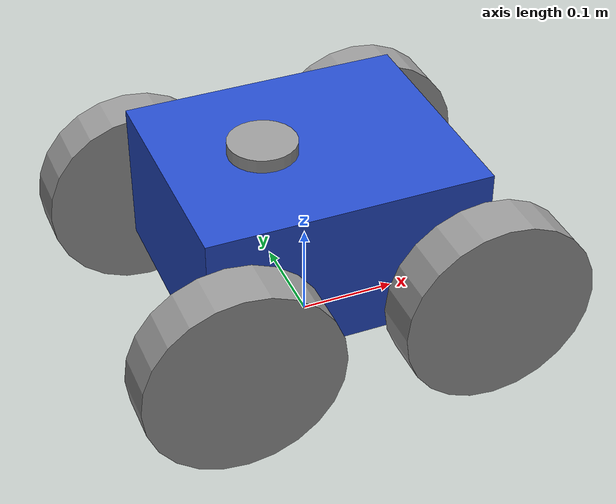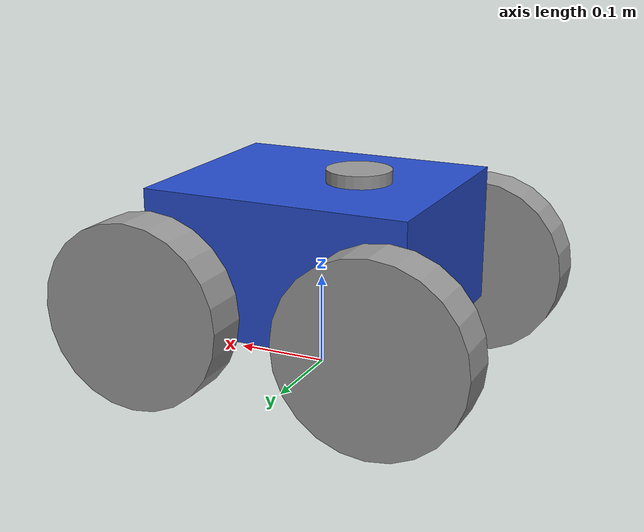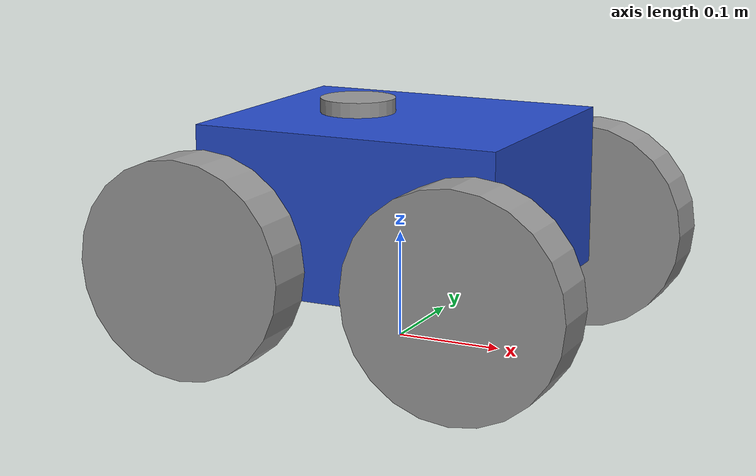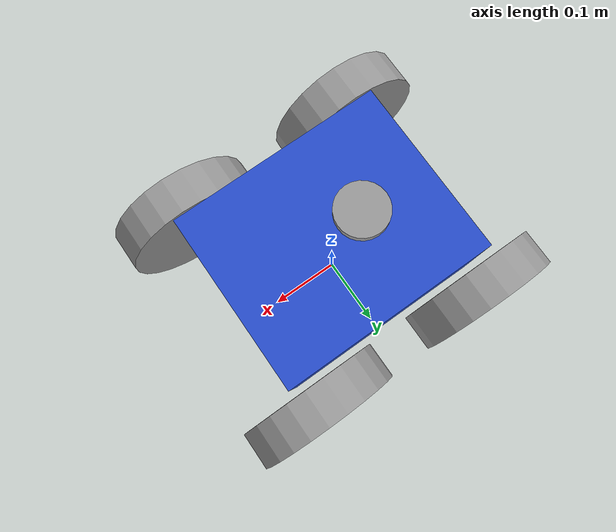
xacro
<?xml version="1.0" ?>
<robot name="yardguard" xmlns:xacro="http://www.ros.org/wiki/xacro">
  <xacro:property name="base_length" value="0.288" />
  <xacro:property name="base_width" value="0.24" />
  <xacro:property name="base_height" value="0.15" />

  <xacro:property name="wheel_radius" value="0.1" />
  <xacro:property name="wheel_length" value="0.05" />

  <!-- base_footprint (projection of base_link on the ground) -->
  <link name="base_footprint"/>
  <joint name="base_joint" type="fixed">
    <parent link="base_footprint"/>
    <child link="base_link"/>
    <origin rpy="0 0 0" xyz="0 0 ${wheel_radius + 0.035}"/>
  </joint>
  <!-- base_link and base_scan (required for Nav2) -->
  <link name="base_link">
    <visual>
      <geometry>
        <box size="${base_length} ${base_width} ${base_height} "/>
      </geometry>
      <origin rpy="0 0 0" xyz="0 0 0"/>
      <material name="blue"/>
    </visual>
    <collision>
        <geometry>
            <box size="${base_length} ${base_width} ${base_height}" />
        </geometry>
        <origin xyz="0 0 ${base_height / 2.0}" rpy="0 0 0" />
    </collision>
    <xacro:box_inertia m="5.0" x="${base_length}" y="${base_width}" z="${base_height}"
                           o_xyz="0 0 ${base_height / 2.0}" o_rpy="0 0 0" />
  </link>
  <joint name="base_scan_joint" type="fixed">
    <parent link="base_link"/>
    <child link="base_scan"/>
    <origin rpy="0 0 0" xyz="-0.043199999999999995 0 0.075"/>
  </joint>
  <link name="base_scan">
    <visual>
      <geometry>
        <cylinder length="0.0275" radius="0.035"/>
      </geometry>
      <origin rpy="0 0 0" xyz="0 0 0"/>
      <material name="grey"/>
    </visual>
  </link>
  <!-- Wheels (2 differential wheels + 1 caster wheel to keep the balance) -->
  <joint name="back_left_wheel_joint" type="continuous">
    <parent link="base_link"/>
    <child link="back_left_wheel"/>
    <origin rpy="0 0 0" xyz="-0.13 0.155 -0.045"/>
    <axis xyz="0 1 0"/>
  </joint>
  <link name="back_left_wheel">
    <visual>
      <geometry>
        <cylinder length="${wheel_length}" radius="${wheel_radius}"/>
      </geometry>
      <origin rpy="1.57 0 0" xyz="0 0 0"/>
      <material name="grey"/>
    </visual>
    <collision>
        <geometry>
            <sphere radius="${wheel_radius}" />
        </geometry>
        <origin xyz="0 0 0" rpy="0 0 0" />
    </collision>
    <xacro:cylinder_inertia m="1.0" r="${wheel_radius}" l="${wheel_length}"
                            o_xyz="0 0 0" o_rpy="${pi / 2.0} 0 0" />
  </link>
  <joint name="back_right_wheel_joint" type="continuous">
    <parent link="base_link"/>
    <child link="back_right_wheel"/>
    <origin rpy="0 0 0" xyz="-0.13 -0.155 -0.045"/>
    <axis xyz="0 1 0"/>
  </joint>
  <link name="back_right_wheel">
    <visual>
      <geometry>
        <cylinder length="${wheel_length}" radius="${wheel_radius}"/>
      </geometry>
      <origin rpy="1.57 0 0" xyz="0 0 0"/>
      <material name="grey"/>
    </visual>
    <collision>
        <geometry>
            <sphere radius="${wheel_radius}" />
        </geometry>
        <origin xyz="0 0 0" rpy="0 0 0" />
    </collision>
    <xacro:cylinder_inertia m="1.0" r="${wheel_radius}" l="${wheel_length}"
                            o_xyz="0 0 0" o_rpy="${pi / 2.0} 0 0" />
  </link>
  <joint name="front_right_wheel_joint" type="continuous">
    <parent link="base_link"/>
    <child link="front_right_wheel"/>
    <origin rpy="0 0 0" xyz="0.13 -0.155 -0.045"/>
    <axis xyz="0 1 0"/>
  </joint>
  <link name="front_right_wheel">
    <visual>
      <geometry>
        <cylinder length="${wheel_length}" radius="${wheel_radius}"/>
      </geometry>
      <origin rpy="1.57 0 0" xyz="0 0 0"/>
      <material name="grey"/>
    </visual>
    <collision>
        <geometry>
            <sphere radius="${wheel_radius}" />
        </geometry>
        <origin xyz="0 0 0" rpy="0 0 0" />
    </collision>
    <xacro:cylinder_inertia m="1.0" r="${wheel_radius}" l="${wheel_length}"
                            o_xyz="0 0 0" o_rpy="${pi / 2.0} 0 0" />
  </link>
  <joint name="front_left_wheel_joint" type="continuous">
    <parent link="base_link"/>
    <child link="front_left_wheel"/>
    <origin rpy="0 0 0" xyz="0.13 0.155 -0.045"/>
    <axis xyz="0 1 0"/>
  </joint>
  <link name="front_left_wheel">
    <visual>
      <geometry>
        <cylinder length="${wheel_length}" radius="${wheel_radius}"/>
      </geometry>
      <origin rpy="1.57 0 0" xyz="0 0 0"/>
      <material name="grey"/>
    </visual>
    <collision>
        <geometry>
            <sphere radius="${wheel_radius}" />
        </geometry>
        <origin xyz="0 0 0" rpy="0 0 0" />
    </collision>
    <xacro:cylinder_inertia m="1.0" r="${wheel_radius}" l="${wheel_length}"
                            o_xyz="0 0 0" o_rpy="${pi / 2.0} 0 0" />
  </link>
</robot>
